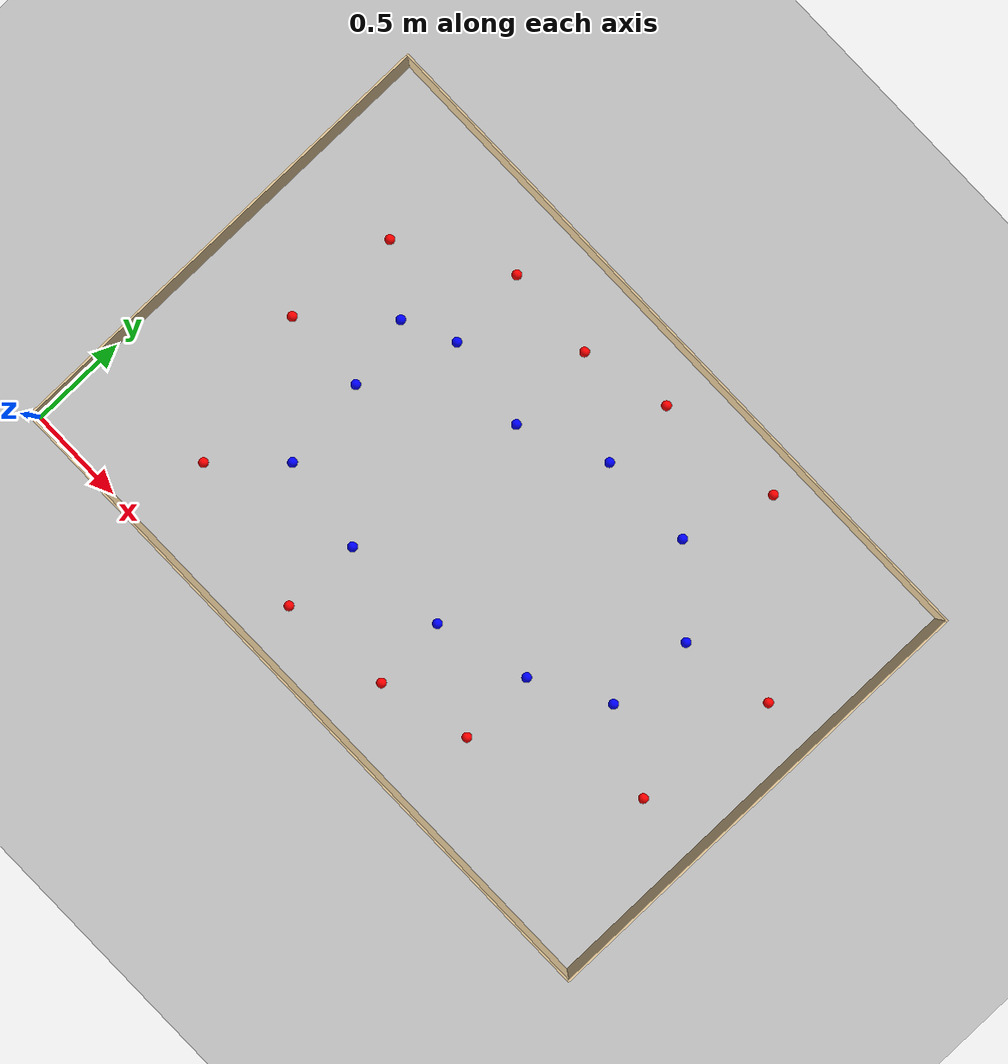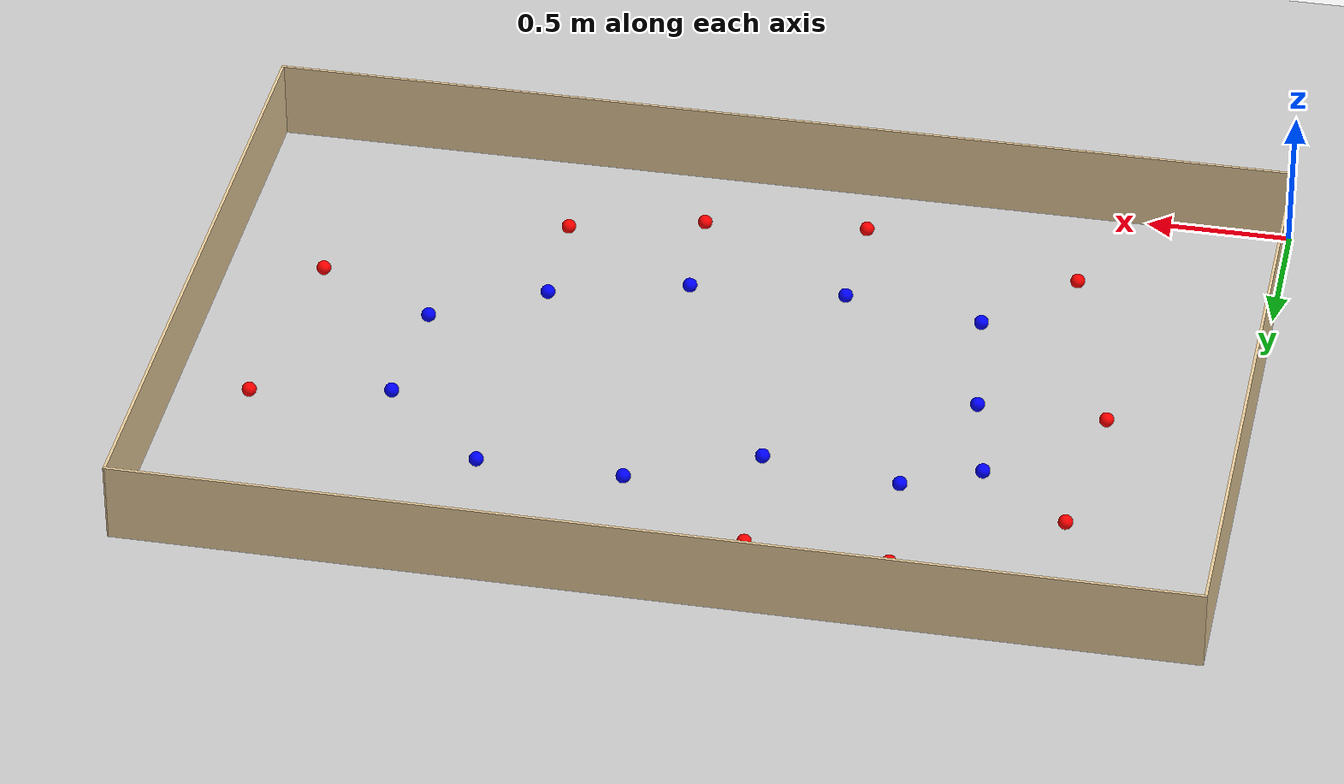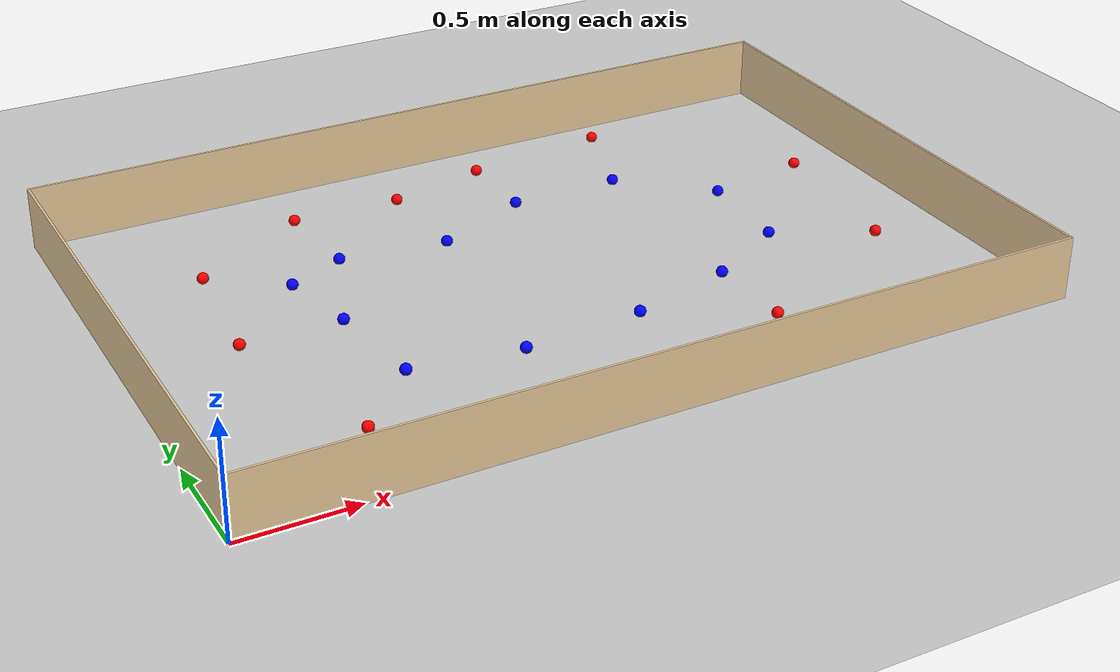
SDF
<?xml version="1.0" ?>
<sdf version="1.4">
  <world name="default">
    <scene>
      <ambient>0.5 0.5 0.5 1.0</ambient>
      <shadows>0</shadows>
    </scene>
    <include>
      <uri>model://ground_plane</uri>
    </include>
    <include>
      <uri>model://sun</uri>
    </include>

    <model name='sphere_blue1'>
      <static>0</static>
      <link name='body'>
        <inertial>
          <mass>0.06</mass>
          <inertia>
            <ixx>0.001</ixx>
            <iyy>0.001</iyy>
            <izz>0.001</izz>
            <ixy>0</ixy>
            <ixz>0</ixz>
            <iyz>0</iyz>
          </inertia>
          <pose>0 0 0 0 -0 0</pose>
        </inertial>
        <visual name='vis'>
          <geometry>
            <mesh>
              <uri>model://sphere_blue/sphere.dae</uri>
            </mesh>
          </geometry>
        </visual>
        <collision name='col'>
          <pose>0 0 0.025 0 -0 0</pose>
          <geometry>
            <box>
              <size>0.05 0.05 0.05</size>
            </box>
          </geometry>
          <surface>
            <friction>
              <ode>
                <mu>0.1</mu>
                <mu2>0.1</mu2>
                <slip1>0.9</slip1>
                <slip2>0.9</slip2>
              </ode>
              <torsional>
                <ode/>
              </torsional>
            </friction>
            <contact>
              <ode/>
            </contact>
            <bounce/>
          </surface>
          <max_contacts>10</max_contacts>
        </collision>
        <self_collide>0</self_collide>
        <enable_wind>0</enable_wind>
        <kinematic>0</kinematic>
      </link>
      <pose>0.98007 0.72082 0 0 -0 0</pose>
    </model>
    <model name='sphere_red1'>
      <static>0</static>
      <link name='body'>
        <inertial>
          <mass>0.06</mass>
          <inertia>
            <ixx>0.001</ixx>
            <iyy>0.001</iyy>
            <izz>0.001</izz>
            <ixy>0</ixy>
            <ixz>0</ixz>
            <iyz>0</iyz>
          </inertia>
          <pose>0 0 0 0 -0 0</pose>
        </inertial>
        <visual name='vis'>
          <geometry>
            <mesh>
              <uri>model://sphere_red/sphere.dae</uri>
            </mesh>
          </geometry>
        </visual>
        <collision name='col'>
          <pose>0 0 0.025 0 -0 0</pose>
          <geometry>
            <box>
              <size>0.05 0.05 0.05</size>
            </box>
          </geometry>
          <surface>
            <friction>
              <ode>
                <mu>0.1</mu>
                <mu2>0.1</mu2>
                <slip1>0.9</slip1>
                <slip2>0.9</slip2>
              </ode>
              <torsional>
                <ode/>
              </torsional>
            </friction>
            <contact>
              <ode/>
            </contact>
            <bounce/>
          </surface>
          <max_contacts>10</max_contacts>
        </collision>
        <self_collide>0</self_collide>
        <enable_wind>0</enable_wind>
        <kinematic>0</kinematic>
      </link>
      <pose>0.6895 0.41527 0 0 -0 0</pose>
    </model>
    <model name='sphere_blue2'>
      <static>0</static>
      <link name='body'>
        <inertial>
          <mass>0.06</mass>
          <inertia>
            <ixx>0.001</ixx>
            <iyy>0.001</iyy>
            <izz>0.001</izz>
            <ixy>0</ixy>
            <ixz>0</ixz>
            <iyz>0</iyz>
          </inertia>
          <pose>0 0 0 0 -0 0</pose>
        </inertial>
        <visual name='vis'>
          <geometry>
            <mesh>
              <uri>model://sphere_blue/sphere.dae</uri>
            </mesh>
          </geometry>
        </visual>
        <collision name='col'>
          <pose>0 0 0.025 0 -0 0</pose>
          <geometry>
            <box>
              <size>0.05 0.05 0.05</size>
            </box>
          </geometry>
          <surface>
            <friction>
              <ode>
                <mu>0.1</mu>
                <mu2>0.1</mu2>
                <slip1>0.9</slip1>
                <slip2>0.9</slip2>
              </ode>
              <torsional>
                <ode/>
              </torsional>
            </friction>
            <contact>
              <ode/>
            </contact>
            <bounce/>
          </surface>
          <max_contacts>10</max_contacts>
        </collision>
        <self_collide>0</self_collide>
        <enable_wind>0</enable_wind>
        <kinematic>0</kinematic>
      </link>
      <pose>1.46594 0.6506 0 0 -0 0</pose>
    </model>
    <model name='sphere_red2'>
      <static>0</static>
      <link name='body'>
        <inertial>
          <mass>0.06</mass>
          <inertia>
            <ixx>0.001</ixx>
            <iyy>0.001</iyy>
            <izz>0.001</izz>
            <ixy>0</ixy>
            <ixz>0</ixz>
            <iyz>0</iyz>
          </inertia>
          <pose>0 0 0 0 -0 0</pose>
        </inertial>
        <visual name='vis'>
          <geometry>
            <mesh>
              <uri>model://sphere_red/sphere.dae</uri>
            </mesh>
          </geometry>
        </visual>
        <collision name='col'>
          <pose>0 0 0.025 0 -0 0</pose>
          <geometry>
            <box>
              <size>0.05 0.05 0.05</size>
            </box>
          </geometry>
          <surface>
            <friction>
              <ode>
                <mu>0.1</mu>
                <mu2>0.1</mu2>
                <slip1>0.9</slip1>
                <slip2>0.9</slip2>
              </ode>
              <torsional>
                <ode/>
              </torsional>
            </friction>
            <contact>
              <ode/>
            </contact>
            <bounce/>
          </surface>
          <max_contacts>10</max_contacts>
        </collision>
        <self_collide>0</self_collide>
        <enable_wind>0</enable_wind>
        <kinematic>0</kinematic>
      </link>
      <pose>1.46094 0.23995 0 0 -0 0</pose>
    </model>
    <model name='sphere_blue3'>
      <static>0</static>
      <link name='body'>
        <inertial>
          <mass>0.06</mass>
          <inertia>
            <ixx>0.001</ixx>
            <iyy>0.001</iyy>
            <izz>0.001</izz>
            <ixy>0</ixy>
            <ixz>0</ixz>
            <iyz>0</iyz>
          </inertia>
          <pose>0 0 0 0 -0 0</pose>
        </inertial>
        <visual name='vis'>
          <geometry>
            <mesh>
              <uri>model://sphere_blue/sphere.dae</uri>
            </mesh>
          </geometry>
        </visual>
        <collision name='col'>
          <pose>0 0 0.025 0 -0 0</pose>
          <geometry>
            <box>
              <size>0.05 0.05 0.05</size>
            </box>
          </geometry>
          <surface>
            <friction>
              <ode>
                <mu>0.1</mu>
                <mu2>0.1</mu2>
                <slip1>0.9</slip1>
                <slip2>0.9</slip2>
              </ode>
              <torsional>
                <ode/>
              </torsional>
            </friction>
            <contact>
              <ode/>
            </contact>
            <bounce/>
          </surface>
          <max_contacts>10</max_contacts>
        </collision>
        <self_collide>0</self_collide>
        <enable_wind>0</enable_wind>
        <kinematic>0</kinematic>
      </link>
      <pose>2.0069 0.6907 0 0 -0 0</pose>
    </model>
    <model name='sphere_red3'>
      <static>0</static>
      <link name='body'>
        <inertial>
          <mass>0.06</mass>
          <inertia>
            <ixx>0.001</ixx>
            <iyy>0.001</iyy>
            <izz>0.001</izz>
            <ixy>0</ixy>
            <ixz>0</ixz>
            <iyz>0</iyz>
          </inertia>
          <pose>0 0 0 0 -0 0</pose>
        </inertial>
        <visual name='vis'>
          <geometry>
            <mesh>
              <uri>model://sphere_red/sphere.dae</uri>
            </mesh>
          </geometry>
        </visual>
        <collision name='col'>
          <pose>0 0 0.025 0 -0 0</pose>
          <geometry>
            <box>
              <size>0.05 0.05 0.05</size>
            </box>
          </geometry>
          <surface>
            <friction>
              <ode>
                <mu>0.1</mu>
                <mu2>0.1</mu2>
                <slip1>0.9</slip1>
                <slip2>0.9</slip2>
              </ode>
              <torsional>
                <ode/>
              </torsional>
            </friction>
            <contact>
              <ode/>
            </contact>
            <bounce/>
          </surface>
          <max_contacts>10</max_contacts>
        </collision>
        <self_collide>0</self_collide>
        <enable_wind>0</enable_wind>
        <kinematic>0</kinematic>
      </link>
      <pose>2.02698 0.305071 0 0 -0 0</pose>
    </model>
    <model name='sphere_blue4'>
      <static>0</static>
      <link name='body'>
        <inertial>
          <mass>0.06</mass>
          <inertia>
            <ixx>0.001</ixx>
            <iyy>0.001</iyy>
            <izz>0.001</izz>
            <ixy>0</ixy>
            <ixz>0</ixz>
            <iyz>0</iyz>
          </inertia>
          <pose>0 0 0 0 -0 0</pose>
        </inertial>
        <visual name='vis'>
          <geometry>
            <mesh>
              <uri>model://sphere_blue/sphere.dae</uri>
            </mesh>
          </geometry>
        </visual>
        <collision name='col'>
          <pose>0 0 0.025 0 -0 0</pose>
          <geometry>
            <box>
              <size>0.05 0.05 0.05</size>
            </box>
          </geometry>
          <surface>
            <friction>
              <ode>
                <mu>0.1</mu>
                <mu2>0.1</mu2>
                <slip1>0.9</slip1>
                <slip2>0.9</slip2>
              </ode>
              <torsional>
                <ode/>
              </torsional>
            </friction>
            <contact>
              <ode/>
            </contact>
            <bounce/>
          </surface>
          <max_contacts>10</max_contacts>
        </collision>
        <self_collide>0</self_collide>
        <enable_wind>0</enable_wind>
        <kinematic>0</kinematic>
      </link>
      <pose>2.4827 0.8210 0 0 -0 0</pose>
    </model>
    <model name='sphere_red4'>
      <static>0</static>
      <link name='body'>
        <inertial>
          <mass>0.06</mass>
          <inertia>
            <ixx>0.001</ixx>
            <iyy>0.001</iyy>
            <izz>0.001</izz>
            <ixy>0</ixy>
            <ixz>0</ixz>
            <iyz>0</iyz>
          </inertia>
          <pose>0 0 0 0 -0 0</pose>
        </inertial>
        <visual name='vis'>
          <geometry>
            <mesh>
              <uri>model://sphere_red/sphere.dae</uri>
            </mesh>
          </geometry>
        </visual>
        <collision name='col'>
          <pose>0 0 0.025 0 -0 0</pose>
          <geometry>
            <box>
              <size>0.05 0.05 0.05</size>
            </box>
          </geometry>
          <surface>
            <friction>
              <ode>
                <mu>0.1</mu>
                <mu2>0.1</mu2>
                <slip1>0.9</slip1>
                <slip2>0.9</slip2>
              </ode>
              <torsional>
                <ode/>
              </torsional>
            </friction>
            <contact>
              <ode/>
            </contact>
            <bounce/>
          </surface>
          <max_contacts>10</max_contacts>
        </collision>
        <self_collide>0</self_collide>
        <enable_wind>0</enable_wind>
        <kinematic>0</kinematic>
      </link>
      <pose>2.49281 0.42028 0 0 -0 0</pose>
    </model>
    <model name='sphere_blue5'>
      <static>0</static>
      <link name='body'>
        <inertial>
          <mass>0.06</mass>
          <inertia>
            <ixx>0.001</ixx>
            <iyy>0.001</iyy>
            <izz>0.001</izz>
            <ixy>0</ixy>
            <ixz>0</ixz>
            <iyz>0</iyz>
          </inertia>
          <pose>0 0 0 0 -0 0</pose>
        </inertial>
        <visual name='vis'>
          <geometry>
            <mesh>
              <uri>model://sphere_blue/sphere.dae</uri>
            </mesh>
          </geometry>
        </visual>
        <collision name='col'>
          <pose>0 0 0.025 0 -0 0</pose>
          <geometry>
            <box>
              <size>0.05 0.05 0.05</size>
            </box>
          </geometry>
          <surface>
            <friction>
              <ode>
                <mu>0.1</mu>
                <mu2>0.1</mu2>
                <slip1>0.9</slip1>
                <slip2>0.9</slip2>
              </ode>
              <torsional>
                <ode/>
              </torsional>
            </friction>
            <contact>
              <ode/>
            </contact>
            <bounce/>
          </surface>
          <max_contacts>10</max_contacts>
        </collision>
        <self_collide>0</self_collide>
        <enable_wind>0</enable_wind>
        <kinematic>0</kinematic>
      </link>
      <pose>2.85847 1.03138 0 0 -0 0</pose>
    </model>
    <model name='sphere_red5'>
      <static>0</static>
      <link name='body'>
        <inertial>
          <mass>0.06</mass>
          <inertia>
            <ixx>0.001</ixx>
            <iyy>0.001</iyy>
            <izz>0.001</izz>
            <ixy>0</ixy>
            <ixz>0</ixz>
            <iyz>0</iyz>
          </inertia>
          <pose>0 0 0 0 -0 0</pose>
        </inertial>
        <visual name='vis'>
          <geometry>
            <mesh>
              <uri>model://sphere_red/sphere.dae</uri>
            </mesh>
          </geometry>
        </visual>
        <collision name='col'>
          <pose>0 0 0.025 0 -0 0</pose>
          <geometry>
            <box>
              <size>0.05 0.05 0.05</size>
            </box>
          </geometry>
          <surface>
            <friction>
              <ode>
                <mu>0.1</mu>
                <mu2>0.1</mu2>
                <slip1>0.9</slip1>
                <slip2>0.9</slip2>
              </ode>
              <torsional>
                <ode/>
              </torsional>
            </friction>
            <contact>
              <ode/>
            </contact>
            <bounce/>
          </surface>
          <max_contacts>10</max_contacts>
        </collision>
        <self_collide>0</self_collide>
        <enable_wind>0</enable_wind>
        <kinematic>0</kinematic>
      </link>
      <pose>3.27923 0.8260 0 0 -0 0</pose>
    </model>
    <model name='sphere_blue6'>
      <static>0</static>
      <link name='body'>
        <inertial>
          <mass>0.06</mass>
          <inertia>
            <ixx>0.001</ixx>
            <iyy>0.001</iyy>
            <izz>0.001</izz>
            <ixy>0</ixy>
            <ixz>0</ixz>
            <iyz>0</iyz>
          </inertia>
          <pose>0 0 0 0 -0 0</pose>
        </inertial>
        <visual name='vis'>
          <geometry>
            <mesh>
              <uri>model://sphere_blue/sphere.dae</uri>
            </mesh>
          </geometry>
        </visual>
        <collision name='col'>
          <pose>0 0 0.025 0 -0 0</pose>
          <geometry>
            <box>
              <size>0.05 0.05 0.05</size>
            </box>
          </geometry>
          <surface>
            <friction>
              <ode>
                <mu>0.1</mu>
                <mu2>0.1</mu2>
                <slip1>0.9</slip1>
                <slip2>0.9</slip2>
              </ode>
              <torsional>
                <ode/>
              </torsional>
            </friction>
            <contact>
              <ode/>
            </contact>
            <bounce/>
          </surface>
          <max_contacts>10</max_contacts>
        </collision>
        <self_collide>0</self_collide>
        <enable_wind>0</enable_wind>
        <kinematic>0</kinematic>
      </link>
      <pose>2.8835 1.48220 0 0 -0 0</pose>
    </model>
    <model name='sphere_red6'>
      <static>0</static>
      <link name='body'>
        <inertial>
          <mass>0.06</mass>
          <inertia>
            <ixx>0.001</ixx>
            <iyy>0.001</iyy>
            <izz>0.001</izz>
            <ixy>0</ixy>
            <ixz>0</ixz>
            <iyz>0</iyz>
          </inertia>
          <pose>0 0 0 0 -0 0</pose>
        </inertial>
        <visual name='vis'>
          <geometry>
            <mesh>
              <uri>model://sphere_red/sphere.dae</uri>
            </mesh>
          </geometry>
        </visual>
        <collision name='col'>
          <pose>0 0 0.025 0 -0 0</pose>
          <geometry>
            <box>
              <size>0.05 0.05 0.05</size>
            </box>
          </geometry>
          <surface>
            <friction>
              <ode>
                <mu>0.1</mu>
                <mu2>0.1</mu2>
                <slip1>0.9</slip1>
                <slip2>0.9</slip2>
              </ode>
              <torsional>
                <ode/>
              </torsional>
            </friction>
            <contact>
              <ode/>
            </contact>
            <bounce/>
          </surface>
          <max_contacts>10</max_contacts>
        </collision>
        <self_collide>0</self_collide>
        <enable_wind>0</enable_wind>
        <kinematic>0</kinematic>
      </link>
      <pose>3.3594 1.56735 0 0 -0 0</pose>
    </model>
    <model name='sphere_blue7'>
      <static>0</static>
      <link name='body'>
        <inertial>
          <mass>0.06</mass>
          <inertia>
            <ixx>0.001</ixx>
            <iyy>0.001</iyy>
            <izz>0.001</izz>
            <ixy>0</ixy>
            <ixz>0</ixz>
            <iyz>0</iyz>
          </inertia>
          <pose>0 0 0 0 -0 0</pose>
        </inertial>
        <visual name='vis'>
          <geometry>
            <mesh>
              <uri>model://sphere_blue/sphere.dae</uri>
            </mesh>
          </geometry>
        </visual>
        <collision name='col'>
          <pose>0 0 0.025 0 -0 0</pose>
          <geometry>
            <box>
              <size>0.05 0.05 0.05</size>
            </box>
          </geometry>
          <surface>
            <friction>
              <ode>
                <mu>0.1</mu>
                <mu2>0.1</mu2>
                <slip1>0.9</slip1>
                <slip2>0.9</slip2>
              </ode>
              <torsional>
                <ode/>
              </torsional>
            </friction>
            <contact>
              <ode/>
            </contact>
            <bounce/>
          </surface>
          <max_contacts>10</max_contacts>
        </collision>
        <self_collide>0</self_collide>
        <enable_wind>0</enable_wind>
        <kinematic>0</kinematic>
      </link>
      <pose>2.5178 1.80779 0 0 -0 0</pose>
    </model>
    <model name='sphere_red7'>
      <static>0</static>
      <link name='body'>
        <inertial>
          <mass>0.06</mass>
          <inertia>
            <ixx>0.001</ixx>
            <iyy>0.001</iyy>
            <izz>0.001</izz>
            <ixy>0</ixy>
            <ixz>0</ixz>
            <iyz>0</iyz>
          </inertia>
          <pose>0 0 0 0 -0 0</pose>
        </inertial>
        <visual name='vis'>
          <geometry>
            <mesh>
              <uri>model://sphere_red/sphere.dae</uri>
            </mesh>
          </geometry>
        </visual>
        <collision name='col'>
          <pose>0 0 0.025 0 -0 0</pose>
          <geometry>
            <box>
              <size>0.05 0.05 0.05</size>
            </box>
          </geometry>
          <surface>
            <friction>
              <ode>
                <mu>0.1</mu>
                <mu2>0.1</mu2>
                <slip1>0.9</slip1>
                <slip2>0.9</slip2>
              </ode>
              <torsional>
                <ode/>
              </torsional>
            </friction>
            <contact>
              <ode/>
            </contact>
            <bounce/>
          </surface>
          <max_contacts>10</max_contacts>
        </collision>
        <self_collide>0</self_collide>
        <enable_wind>0</enable_wind>
        <kinematic>0</kinematic>
      </link>
      <pose>2.66312 2.26361 0 0 -0 0</pose>
    </model>
    <model name='sphere_blue8'>
      <static>0</static>
      <link name='body'>
        <inertial>
          <mass>0.06</mass>
          <inertia>
            <ixx>0.001</ixx>
            <iyy>0.001</iyy>
            <izz>0.001</izz>
            <ixy>0</ixy>
            <ixz>0</ixz>
            <iyz>0</iyz>
          </inertia>
          <pose>0 0 0 0 -0 0</pose>
        </inertial>
        <visual name='vis'>
          <geometry>
            <mesh>
              <uri>model://sphere_blue/sphere.dae</uri>
            </mesh>
          </geometry>
        </visual>
        <collision name='col'>
          <pose>0 0 0.025 0 -0 0</pose>
          <geometry>
            <box>
              <size>0.05 0.05 0.05</size>
            </box>
          </geometry>
          <surface>
            <friction>
              <ode>
                <mu>0.1</mu>
                <mu2>0.1</mu2>
                <slip1>0.9</slip1>
                <slip2>0.9</slip2>
              </ode>
              <torsional>
                <ode/>
              </torsional>
            </friction>
            <contact>
              <ode/>
            </contact>
            <bounce/>
          </surface>
          <max_contacts>10</max_contacts>
        </collision>
        <self_collide>0</self_collide>
        <enable_wind>0</enable_wind>
        <kinematic>0</kinematic>
      </link>
      <pose>2.01695 1.80779 0 0 -0 0</pose>
    </model>
    <model name='sphere_red8'>
      <static>0</static>
      <link name='body'>
        <inertial>
          <mass>0.06</mass>
          <inertia>
            <ixx>0.001</ixx>
            <iyy>0.001</iyy>
            <izz>0.001</izz>
            <ixy>0</ixy>
            <ixz>0</ixz>
            <iyz>0</iyz>
          </inertia>
          <pose>0 0 0 0 -0 0</pose>
        </inertial>
        <visual name='vis'>
          <geometry>
            <mesh>
              <uri>model://sphere_red/sphere.dae</uri>
            </mesh>
          </geometry>
        </visual>
        <collision name='col'>
          <pose>0 0 0.025 0 -0 0</pose>
          <geometry>
            <box>
              <size>0.05 0.05 0.05</size>
            </box>
          </geometry>
          <surface>
            <friction>
              <ode>
                <mu>0.1</mu>
                <mu2>0.1</mu2>
                <slip1>0.9</slip1>
                <slip2>0.9</slip2>
              </ode>
              <torsional>
                <ode/>
              </torsional>
            </friction>
            <contact>
              <ode/>
            </contact>
            <bounce/>
          </surface>
          <max_contacts>10</max_contacts>
        </collision>
        <self_collide>0</self_collide>
        <enable_wind>0</enable_wind>
        <kinematic>0</kinematic>
      </link>
      <pose>2.00772 2.1886 0 0 -0 0</pose>
    </model>
    <model name='sphere_blue9'>
      <static>0</static>
      <link name='body'>
        <inertial>
          <mass>0.06</mass>
          <inertia>
            <ixx>0.001</ixx>
            <iyy>0.001</iyy>
            <izz>0.001</izz>
            <ixy>0</ixy>
            <ixz>0</ixz>
            <iyz>0</iyz>
          </inertia>
          <pose>0 0 0 0 -0 0</pose>
        </inertial>
        <visual name='vis'>
          <geometry>
            <mesh>
              <uri>model://sphere_blue/sphere.dae</uri>
            </mesh>
          </geometry>
        </visual>
        <collision name='col'>
          <pose>0 0 0.025 0 -0 0</pose>
          <geometry>
            <box>
              <size>0.05 0.05 0.05</size>
            </box>
          </geometry>
          <surface>
            <friction>
              <ode>
                <mu>0.1</mu>
                <mu2>0.1</mu2>
                <slip1>0.9</slip1>
                <slip2>0.9</slip2>
              </ode>
              <torsional>
                <ode/>
              </torsional>
            </friction>
            <contact>
              <ode/>
            </contact>
            <bounce/>
          </surface>
          <max_contacts>10</max_contacts>
        </collision>
        <self_collide>0</self_collide>
        <enable_wind>0</enable_wind>
        <kinematic>0</kinematic>
      </link>
      <pose>1.58116 1.61243 0 0 -0 0</pose>
    </model>
    <model name='sphere_red9'>
      <static>0</static>
      <link name='body'>
        <inertial>
          <mass>0.06</mass>
          <inertia>
            <ixx>0.001</ixx>
            <iyy>0.001</iyy>
            <izz>0.001</izz>
            <ixy>0</ixy>
            <ixz>0</ixz>
            <iyz>0</iyz>
          </inertia>
          <pose>0 0 0 0 -0 0</pose>
        </inertial>
        <visual name='vis'>
          <geometry>
            <mesh>
              <uri>model://sphere_red/sphere.dae</uri>
            </mesh>
          </geometry>
        </visual>
        <collision name='col'>
          <pose>0 0 0.025 0 -0 0</pose>
          <geometry>
            <box>
              <size>0.05 0.05 0.05</size>
            </box>
          </geometry>
          <surface>
            <friction>
              <ode>
                <mu>0.1</mu>
                <mu2>0.1</mu2>
                <slip1>0.9</slip1>
                <slip2>0.9</slip2>
              </ode>
              <torsional>
                <ode/>
              </torsional>
            </friction>
            <contact>
              <ode/>
            </contact>
            <bounce/>
          </surface>
          <max_contacts>10</max_contacts>
        </collision>
        <self_collide>0</self_collide>
        <enable_wind>0</enable_wind>
        <kinematic>0</kinematic>
      </link>
      <pose>1.55613 2.08328 0 0 -0 0</pose>
    </model>
    <model name='sphere_blue10'>
      <static>0</static>
      <link name='body'>
        <inertial>
          <mass>0.06</mass>
          <inertia>
            <ixx>0.001</ixx>
            <iyy>0.001</iyy>
            <izz>0.001</izz>
            <ixy>0</ixy>
            <ixz>0</ixz>
            <iyz>0</iyz>
          </inertia>
          <pose>0 0 0 0 -0 0</pose>
        </inertial>
        <visual name='vis'>
          <geometry>
            <mesh>
              <uri>model://sphere_blue/sphere.dae</uri>
            </mesh>
          </geometry>
        </visual>
        <collision name='col'>
          <pose>0 0 0.025 0 -0 0</pose>
          <geometry>
            <box>
              <size>0.05 0.05 0.05</size>
            </box>
          </geometry>
          <surface>
            <friction>
              <ode>
                <mu>0.1</mu>
                <mu2>0.1</mu2>
                <slip1>0.9</slip1>
                <slip2>0.9</slip2>
              </ode>
              <torsional>
                <ode/>
              </torsional>
            </friction>
            <contact>
              <ode/>
            </contact>
            <bounce/>
          </surface>
          <max_contacts>10</max_contacts>
        </collision>
        <self_collide>0</self_collide>
        <enable_wind>0</enable_wind>
        <kinematic>0</kinematic>
      </link>
      <pose>1.10532 1.67755 0 0 -0 0</pose>
    </model>
    <model name='sphere_red10'>
      <static>0</static>
      <link name='body'>
        <inertial>
          <mass>0.06</mass>
          <inertia>
            <ixx>0.001</ixx>
            <iyy>0.001</iyy>
            <izz>0.001</izz>
            <ixy>0</ixy>
            <ixz>0</ixz>
            <iyz>0</iyz>
          </inertia>
          <pose>0 0 0 0 -0 0</pose>
        </inertial>
        <visual name='vis'>
          <geometry>
            <mesh>
              <uri>model://sphere_red/sphere.dae</uri>
            </mesh>
          </geometry>
        </visual>
        <collision name='col'>
          <pose>0 0 0.025 0 -0 0</pose>
          <geometry>
            <box>
              <size>0.05 0.05 0.05</size>
            </box>
          </geometry>
          <surface>
            <friction>
              <ode>
                <mu>0.1</mu>
                <mu2>0.1</mu2>
                <slip1>0.9</slip1>
                <slip2>0.9</slip2>
              </ode>
              <torsional>
                <ode/>
              </torsional>
            </friction>
            <contact>
              <ode/>
            </contact>
            <bounce/>
          </surface>
          <max_contacts>10</max_contacts>
        </collision>
        <self_collide>0</self_collide>
        <enable_wind>0</enable_wind>
        <kinematic>0</kinematic>
      </link>
      <pose>1.07024 2.10332 0 0 -0 0</pose>
    </model>
    <model name='sphere_blue11'>
      <static>0</static>
      <link name='body'>
        <inertial>
          <mass>0.06</mass>
          <inertia>
            <ixx>0.001</ixx>
            <iyy>0.001</iyy>
            <izz>0.001</izz>
            <ixy>0</ixy>
            <ixz>0</ixz>
            <iyz>0</iyz>
          </inertia>
          <pose>0 0 0 0 -0 0</pose>
        </inertial>
        <visual name='vis'>
          <geometry>
            <mesh>
              <uri>model://sphere_blue/sphere.dae</uri>
            </mesh>
          </geometry>
        </visual>
        <collision name='col'>
          <pose>0 0 0.025 0 -0 0</pose>
          <geometry>
            <box>
              <size>0.05 0.05 0.05</size>
            </box>
          </geometry>
          <surface>
            <friction>
              <ode>
                <mu>0.1</mu>
                <mu2>0.1</mu2>
                <slip1>0.9</slip1>
                <slip2>0.9</slip2>
              </ode>
              <torsional>
                <ode/>
              </torsional>
            </friction>
            <contact>
              <ode/>
            </contact>
            <bounce/>
          </surface>
          <max_contacts>10</max_contacts>
        </collision>
        <self_collide>0</self_collide>
        <enable_wind>0</enable_wind>
        <kinematic>0</kinematic>
      </link>
      <pose>0.84484 1.55733 0 0 -0 0</pose>
    </model>
    <model name='sphere_red11'>
      <static>0</static>
      <link name='body'>
        <inertial>
          <mass>0.06</mass>
          <inertia>
            <ixx>0.001</ixx>
            <iyy>0.001</iyy>
            <izz>0.001</izz>
            <ixy>0</ixy>
            <ixz>0</ixz>
            <iyz>0</iyz>
          </inertia>
          <pose>0 0 0 0 -0 0</pose>
        </inertial>
        <visual name='vis'>
          <geometry>
            <mesh>
              <uri>model://sphere_red/sphere.dae</uri>
            </mesh>
          </geometry>
        </visual>
        <collision name='col'>
          <pose>0 0 0.025 0 -0 0</pose>
          <geometry>
            <box>
              <size>0.05 0.05 0.05</size>
            </box>
          </geometry>
          <surface>
            <friction>
              <ode>
                <mu>0.1</mu>
                <mu2>0.1</mu2>
                <slip1>0.9</slip1>
                <slip2>0.9</slip2>
              </ode>
              <torsional>
                <ode/>
              </torsional>
            </friction>
            <contact>
              <ode/>
            </contact>
            <bounce/>
          </surface>
          <max_contacts>10</max_contacts>
        </collision>
        <self_collide>0</self_collide>
        <enable_wind>0</enable_wind>
        <kinematic>0</kinematic>
      </link>
      <pose>0.534267 1.78274 0 0 -0 0</pose>
    </model>
    <model name='sphere_blue12'>
      <static>0</static>
      <link name='body'>
        <inertial>
          <mass>0.06</mass>
          <inertia>
            <ixx>0.001</ixx>
            <iyy>0.001</iyy>
            <izz>0.001</izz>
            <ixy>0</ixy>
            <ixz>0</ixz>
            <iyz>0</iyz>
          </inertia>
          <pose>0 0 0 0 -0 0</pose>
        </inertial>
        <visual name='vis'>
          <geometry>
            <mesh>
              <uri>model://sphere_blue/sphere.dae</uri>
            </mesh>
          </geometry>
        </visual>
        <collision name='col'>
          <pose>0 0 0.025 0 -0 0</pose>
          <geometry>
            <box>
              <size>0.05 0.05 0.05</size>
            </box>
          </geometry>
          <surface>
            <friction>
              <ode>
                <mu>0.1</mu>
                <mu2>0.1</mu2>
                <slip1>0.9</slip1>
                <slip2>0.9</slip2>
              </ode>
              <torsional>
                <ode/>
              </torsional>
            </friction>
            <contact>
              <ode/>
            </contact>
            <bounce/>
          </surface>
          <max_contacts>10</max_contacts>
        </collision>
        <self_collide>0</self_collide>
        <enable_wind>0</enable_wind>
        <kinematic>0</kinematic>
      </link>
      <pose>0.91996 1.19168 0 0 -0 0</pose>
    </model>
    <model name='sphere_red12'>
      <static>0</static>
      <link name='body'>
        <inertial>
          <mass>0.06</mass>
          <inertia>
            <ixx>0.001</ixx>
            <iyy>0.001</iyy>
            <izz>0.001</izz>
            <ixy>0</ixy>
            <ixz>0</ixz>
            <iyz>0</iyz>
          </inertia>
          <pose>0 0 0 0 -0 0</pose>
        </inertial>
        <visual name='vis'>
          <geometry>
            <mesh>
              <uri>model://sphere_red/sphere.dae</uri>
            </mesh>
          </geometry>
        </visual>
        <collision name='col'>
          <pose>0 0 0.025 0 -0 0</pose>
          <geometry>
            <box>
              <size>0.05 0.05 0.05</size>
            </box>
          </geometry>
          <surface>
            <friction>
              <ode>
                <mu>0.1</mu>
                <mu2>0.1</mu2>
                <slip1>0.9</slip1>
                <slip2>0.9</slip2>
              </ode>
              <torsional>
                <ode/>
              </torsional>
            </friction>
            <contact>
              <ode/>
            </contact>
            <bounce/>
          </surface>
          <max_contacts>10</max_contacts>
        </collision>
        <self_collide>0</self_collide>
        <enable_wind>0</enable_wind>
        <kinematic>0</kinematic>
      </link>
      <pose>0.47918 1.19668 0 0 -0 0</pose>
    </model>

    <model name='outer_box'>
    <pose frame=''>1.81 1.21 0 0 -0 0</pose>
    <link name='Wall_0'>
      <collision name='Wall_0_Collision'>
        <geometry>
          <box>
            <size>3.63 0.01 0.28</size>
          </box>
        </geometry>
        <pose frame=''>0 0 0.14 0 -0 0</pose>
      </collision>
      <visual name='Wall_0_Visual'>
        <pose frame=''>0 0 0.14 0 -0 0</pose>
        <geometry>
          <box>
            <size>3.63 0.01 0.28</size>
          </box>
        </geometry>
        <material>
          <script>
            <uri>file://media/materials/scripts/gazebo.material</uri>
            <name>Gazebo/Grey</name>
          </script>
          <ambient>0.921569 0.807843 0.615686 1</ambient>
        </material>
        <meta>
          <layer>0</layer>
        </meta>
      </visual>
      <pose frame=''>0 1.21 0 0 -0 0</pose>
    </link>
    <link name='Wall_2'>
      <collision name='Wall_2_Collision'>
        <geometry>
          <box>
            <size>2.43 0.01 0.28</size>
          </box>
        </geometry>
        <pose frame=''>0 0 0.14 0 -0 0</pose>
      </collision>
      <visual name='Wall_2_Visual'>
        <pose frame=''>0 0 0.14 0 -0 0</pose>
        <geometry>
          <box>
            <size>2.43 0.01 0.28</size>
          </box>
        </geometry>
        <material>
          <script>
            <uri>file://media/materials/scripts/gazebo.material</uri>
            <name>Gazebo/Grey</name>
          </script>
          <ambient>0.921569 0.807843 0.615686 1</ambient>
        </material>
        <meta>
          <layer>0</layer>
        </meta>
      </visual>
      <pose frame=''>1.81 0 0 0 0 -1.5708</pose>
    </link>
    <link name='Wall_4'>
      <collision name='Wall_4_Collision'>
        <geometry>
          <box>
            <size>3.63 0.01 0.28</size>
          </box>
        </geometry>
        <pose frame=''>0 0 0.14 0 -0 0</pose>
      </collision>
      <visual name='Wall_4_Visual'>
        <pose frame=''>0 0 0.14 0 -0 0</pose>
        <geometry>
          <box>
            <size>3.63 0.01 0.28</size>
          </box>
        </geometry>
        <material>
          <script>
            <uri>file://media/materials/scripts/gazebo.material</uri>
            <name>Gazebo/Grey</name>
          </script>
          <ambient>0.921569 0.807843 0.615686 1</ambient>
        </material>
        <meta>
          <layer>0</layer>
        </meta>
      </visual>
      <pose frame=''>0 -1.21 0 0 -0 3.14159</pose>
    </link>
    <link name='Wall_6'>
      <collision name='Wall_6_Collision'>
        <geometry>
          <box>
            <size>2.43 0.01 0.28</size>
          </box>
        </geometry>
        <pose frame=''>0 0 0.14 0 -0 0</pose>
      </collision>
      <visual name='Wall_6_Visual'>
        <pose frame=''>0 0 0.14 0 -0 0</pose>
        <geometry>
          <box>
            <size>2.43 0.01 0.28</size>
          </box>
        </geometry>
        <material>
          <script>
            <uri>file://media/materials/scripts/gazebo.material</uri>
            <name>Gazebo/Grey</name>
          </script>
          <ambient>0.921569 0.807843 0.615686 1</ambient>
        </material>
        <meta>
          <layer>0</layer>
        </meta>
      </visual>
      <pose frame=''>-1.81 0 0 0 -0 1.5708</pose>
    </link>
    <static>1</static>
  </model>

  </world>
</sdf>
